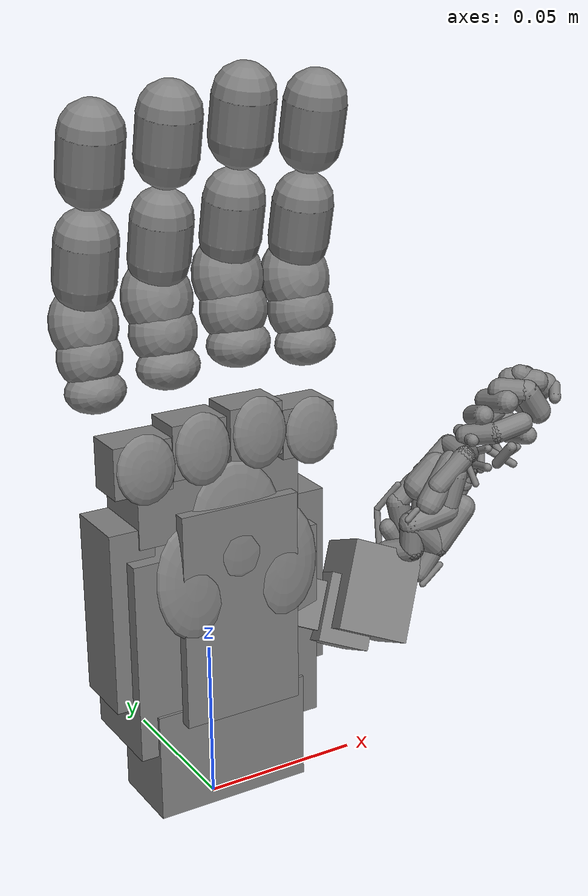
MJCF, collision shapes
<mujoco model="Lingxi_Hand_V2_Right">
  <compiler angle="radian" meshdir="/home/ll/SRTP/Aero-Hand/handinformation/URDF/右/qbr/meshes/" />
  <option timestep="0.01" integrator="Euler" iterations="20" ls_iterations="20">
    <flag eulerdamp="disable" />
  </option>
  <custom>
    <numeric data="80" name="max_contact_points" />
    <numeric data="50" name="max_geom_pairs" />
  </custom>
  <asset>
    <material name="black" rgba="0.2 0.2 0.2 1" />
    <material name="gray" rgba="0.5 0.5 0.5 1" />
    <material name="white" rgba="0.529 0.549 0.549 1" />
    <material name="rubber" rgba="0.3 0.3 0.3 1" />
    <mesh name="v2_palm" file="v2_base_link.STL" />
    <mesh name="v2_thumb_base" file="link1.STL" />
    <mesh name="v2_thumb_mid" file="link2.STL" />
    <mesh name="v2_thumb_tip" file="link3.STL" />
    <mesh name="v2_index_proximal" file="link4.STL" />
    <mesh name="v2_index_distal" file="link5.STL" />
    <mesh name="v2_middle_proximal" file="link6.STL" />
    <mesh name="v2_middle_distal" file="link7.STL" />
    <mesh name="v2_ring_proximal" file="link8.STL" />
    <mesh name="v2_ring_distal" file="link9.STL" />
    <mesh name="v2_pinky_proximal" file="link10.STL" />
    <mesh name="v2_pinky_distal" file="link11.STL" />
  </asset>
  <default>
    <default class="v2_hand">
      <site group="4" />
      <default class="visual">
        <geom group="2" type="mesh" contype="0" conaffinity="0" density="0" material="white" />
      </default>
      <joint damping="0.02" armature="0.001559127" frictionloss="0.02" />
      <position kp="3.0" />
      <default class="mcp">
        <joint range="0 1.3963" damping="0.1" />
        <position ctrlrange="0 1.40" />
      </default>
      <default class="pip">
        <joint range="0 1.2915" damping="0.05" />
      </default>
      <default class="thumb_cmc">
        <joint range="0 1.3788" damping="0.1" />
        <position ctrlrange="0 1.38" />
      </default>
      <!-- 拇指 flex 代理遵循 handinformation 中的两段弯曲：
           被动段约 30°，主动段约 45°。 -->
      <default class="thumb_flex">
        <joint range="0 0.5236" damping="0.05" />
      </default>
      <default class="thumb_mcp">
        <joint range="0 0.7854" damping="0.05" />
        <position ctrlrange="0 0.79" />
      </default>
    </default>
  </default>
  <contact>
    <exclude body1="palm" body2="right_index_proximal" />
    <exclude body1="palm" body2="right_middle_proximal" />
    <exclude body1="palm" body2="right_ring_proximal" />
    <exclude body1="palm" body2="right_pinky_proximal" />
    <exclude body1="palm" body2="right_thumb_base" />
    <exclude body1="palm" body2="right_thumb_mid" />
    <exclude body1="palm" body2="right_ring_distal" />
    <exclude body1="palm" body2="right_pinky_distal" />
    <exclude body1="v2_mount" body2="right_index_proximal" />
    <exclude body1="v2_mount" body2="right_middle_proximal" />
    <exclude body1="v2_mount" body2="right_ring_proximal" />
    <exclude body1="v2_mount" body2="right_pinky_proximal" />
    <exclude body1="v2_mount" body2="right_thumb_base" />
    <exclude body1="right_index_proximal" body2="right_thumb_base" />
    <exclude body1="right_middle_proximal" body2="right_thumb_base" />
    <exclude body1="right_ring_proximal" body2="right_thumb_base" />
    <exclude body1="right_pinky_proximal" body2="right_thumb_base" />
    <exclude body1="right_index_proximal" body2="right_index_distal" />
    <exclude body1="right_middle_proximal" body2="right_middle_distal" />
    <exclude body1="right_ring_proximal" body2="right_ring_distal" />
    <exclude body1="right_pinky_proximal" body2="right_pinky_distal" />
    <exclude body1="right_thumb_base" body2="right_thumb_mid" />
    <exclude body1="right_thumb_mid" body2="right_thumb_tip" />
    <exclude body1="right_index_proximal" body2="right_middle_proximal" />
    <exclude body1="right_index_distal" body2="right_middle_distal" />
    <exclude body1="right_middle_proximal" body2="right_ring_proximal" />
    <exclude body1="right_middle_distal" body2="right_ring_distal" />
    <exclude body1="right_ring_proximal" body2="right_pinky_proximal" />
    <exclude body1="right_ring_distal" body2="right_pinky_distal" />
    <exclude body1="right_index_proximal" body2="right_middle_distal" />
    <exclude body1="right_middle_proximal" body2="right_ring_distal" />
    <exclude body1="right_ring_proximal" body2="right_pinky_distal" />
    <exclude body1="right_middle_proximal" body2="right_index_distal" />
    <exclude body1="right_ring_proximal" body2="right_middle_distal" />
    <exclude body1="right_pinky_proximal" body2="right_ring_distal" />
  </contact>
  <worldbody>
    <body name="v2_mount" pos="0 0 0" euler="1.5708 0 0" childclass="v2_hand">
      <body name="palm" pos="0 0 0">
        <geom type="mesh" mesh="v2_palm" class="visual" />
        <geom name="palm_capsule_000" type="box" size="0.0300 0.0310 0.0145" pos="0.0000 0.0580 -0.0010" group="3" friction="1.95 0.014 0.0002" solref="0.008 1.1" solimp="0.95 0.995 0.0005" />
        <geom name="palm_capsule_001" type="box" size="0.0260 0.0140 0.0105" pos="0.0000 0.1060 -0.0010" group="3" friction="1.95 0.014 0.0002" solref="0.008 1.1" solimp="0.95 0.995 0.0005" />
        <geom name="palm_capsule_002" type="box" size="0.0245 0.0170 0.0120" pos="0.0000 0.0230 0.0025" group="3" friction="1.90 0.014 0.0002" solref="0.008 1.1" solimp="0.95 0.995 0.0005" />
        <geom name="palm_capsule_003" type="box" size="0.0070 0.0280 0.0100" pos="0.0280 0.0700 -0.0010" group="3" friction="1.95 0.014 0.0002" solref="0.008 1.1" solimp="0.95 0.995 0.0005" />
        <geom name="palm_capsule_004" type="box" size="0.0070 0.0280 0.0100" pos="-0.0280 0.0700 -0.0010" group="3" friction="1.95 0.014 0.0002" solref="0.008 1.1" solimp="0.95 0.995 0.0005" />
        <geom name="palm_capsule_005" type="box" size="0.0185 0.0330 0.0018" pos="0.0000 0.0715 0.0198" group="3" friction="2.80 0.020 0.0002" solref="0.008 1.1" solimp="0.95 0.995 0.0005" />
        <geom name="palm_capsule_006" type="ellipsoid" group="3" friction="2.50 0.018 0.0002" solref="0.008 1.1" solimp="0.95 0.995 0.0005" pos="0.0145 0.0835 0.0195" quat="0.999048 -0.043619 0 0" size="0.0115 0.0175 0.0024" />
        <geom name="palm_capsule_007" type="ellipsoid" group="3" friction="2.50 0.018 0.0002" solref="0.008 1.1" solimp="0.95 0.995 0.0005" pos="-0.0145 0.0835 0.0195" quat="0.999048 -0.043619 0 0" size="0.0115 0.0175 0.0024" />
        <geom name="palm_capsule_008" type="ellipsoid" group="3" friction="2.45 0.017 0.0002" solref="0.008 1.1" solimp="0.95 0.995 0.0005" pos="0.0000 0.0980 0.0190" quat="0.999048 -0.043619 0 0" size="0.0145 0.0185 0.0024" />
        <geom name="palm_capsule_009" type="box" size="0.0085 0.0075 0.0062" pos="0.0255 0.1205 0.0102" group="3" friction="2.10 0.015 0.0002" solref="0.008 1.1" solimp="0.95 0.995 0.0005" />
        <geom name="palm_capsule_010" type="ellipsoid" group="3" friction="2.35 0.016 0.0002" solref="0.008 1.1" solimp="0.95 0.995 0.0005" pos="0.0255 0.1210 0.0182" quat="0.999048 -0.043619 0 0" size="0.0086 0.0100 0.0023" />
        <geom name="palm_capsule_011" type="box" size="0.0084 0.0080 0.0063" pos="0.0085 0.1230 0.0100" group="3" friction="2.10 0.015 0.0002" solref="0.008 1.1" solimp="0.95 0.995 0.0005" />
        <geom name="palm_capsule_012" type="ellipsoid" group="3" friction="2.35 0.016 0.0002" solref="0.008 1.1" solimp="0.95 0.995 0.0005" pos="0.0085 0.1235 0.0180" quat="0.999048 -0.043619 0 0" size="0.0085 0.0105 0.0023" />
        <geom name="palm_capsule_013" type="box" size="0.0084 0.0080 0.0063" pos="-0.0095 0.1215 0.0100" group="3" friction="2.10 0.015 0.0002" solref="0.008 1.1" solimp="0.95 0.995 0.0005" />
        <geom name="palm_capsule_014" type="ellipsoid" group="3" friction="2.35 0.016 0.0002" solref="0.008 1.1" solimp="0.95 0.995 0.0005" pos="-0.0095 0.1220 0.0180" quat="0.999048 -0.043619 0 0" size="0.0085 0.0105 0.0023" />
        <geom name="palm_capsule_015" type="box" size="0.0088 0.0075 0.0062" pos="-0.0270 0.1190 0.0102" group="3" friction="2.10 0.015 0.0002" solref="0.008 1.1" solimp="0.95 0.995 0.0005" />
        <geom name="palm_capsule_016" type="ellipsoid" group="3" friction="2.35 0.016 0.0002" solref="0.008 1.1" solimp="0.95 0.995 0.0005" pos="-0.0270 0.1195 0.0182" quat="0.999048 -0.043619 0 0" size="0.0088 0.0100 0.0023" />
        <site name="grasp_site" pos="0 0.085 -0.020" group="4" />
        <body name="right_index_proximal" pos="0.034276 0.1374 0.001">
          <inertial pos="-0.003657 0.0162 0.000274" mass="0.0686" diaginertia="7.49e-06 7.33e-06 2.82e-06" />
          <joint name="right_index_mcp" axis="1 0 0" class="mcp" />
          <geom type="mesh" mesh="v2_index_proximal" class="visual" />
          <geom name="right_index_proximal_capsule_000" type="ellipsoid" group="3" friction="1.5" solref="0.005 1.0" solimp="0.97 0.999 0.0001" pos="-0.003700 0.006000 0.005400" quat="0.999048 -0.043619 0 0" size="0.009400 0.006600 0.007600" />
          <geom name="right_index_proximal_capsule_001" type="ellipsoid" group="3" friction="1.5" solref="0.005 1.0" solimp="0.97 0.999 0.0001" pos="-0.003950 0.024400 0.000200" quat="0.987688 -0.156434 0 0" size="0.010400 0.011800 0.008900" />
          <geom name="right_index_proximal_capsule_002" type="ellipsoid" group="3" friction="1.5" solref="0.005 1.0" solimp="0.97 0.999 0.0001" pos="-0.003650 0.015400 0.002700" quat="0.994522 -0.104528 0 0" size="0.010000 0.009600 0.008300" />
          <body name="right_index_distal" pos="0.00084336 0.031988 -0.0026473">
            <inertial pos="-0.00450 0.0246 0.00927" mass="0.0755" diaginertia="1.58e-05 1.57e-05 2.47e-06" />
            <joint name="right_index_pip" axis="1 0 0" class="pip" />
            <geom type="mesh" mesh="v2_index_distal" class="visual" />
            <geom name="right_index_distal_capsule_000" type="capsule" group="3" friction="1.5" solref="0.005 1.0" solimp="0.97 0.999 0.0001" fromto="-0.004533 0.003643 0.004505 -0.004547 0.015148 0.007211" size="0.008789" />
            <geom name="right_index_distal_capsule_001" type="capsule" group="3" friction="1.5" solref="0.005 1.0" solimp="0.97 0.999 0.0001" fromto="-0.004569 0.032374 0.011263 -0.004584 0.043669 0.013920" size="0.008894" />
            <site name="if_tip" pos="-0.004 0.052 0.005" group="4" />
            <site name="if_tip_t00" pos="-0.007 0.042 0.005" size="0.003" />
            <site name="if_tip_t01" pos="-0.005 0.042 0.005" size="0.003" />
            <site name="if_tip_t02" pos="-0.003 0.042 0.005" size="0.003" />
            <site name="if_tip_t03" pos="-0.001 0.042 0.005" size="0.003" />
            <site name="if_tip_t04" pos="-0.007 0.045 0.005" size="0.003" />
            <site name="if_tip_t05" pos="-0.005 0.045 0.005" size="0.003" />
            <site name="if_tip_t06" pos="-0.003 0.045 0.005" size="0.003" />
            <site name="if_tip_t07" pos="-0.001 0.045 0.005" size="0.003" />
            <site name="if_tip_t08" pos="-0.007 0.048 0.005" size="0.003" />
            <site name="if_tip_t09" pos="-0.005 0.048 0.005" size="0.003" />
            <site name="if_tip_t10" pos="-0.003 0.048 0.005" size="0.003" />
            <site name="if_tip_t11" pos="-0.001 0.048 0.005" size="0.003" />
            <site name="if_tip_t12" pos="-0.007 0.051 0.005" size="0.003" />
            <site name="if_tip_t13" pos="-0.005 0.051 0.005" size="0.003" />
            <site name="if_tip_t14" pos="-0.003 0.051 0.005" size="0.003" />
            <site name="if_tip_t15" pos="-0.001 0.051 0.005" size="0.003" />
          </body>
        </body>
        <body name="right_middle_proximal" pos="0.012276 0.14055 0.001">
          <inertial pos="-0.003657 0.0162 0.000274" mass="0.0686" diaginertia="7.49e-06 7.33e-06 2.82e-06" />
          <joint name="right_middle_mcp" axis="1 0 0" class="mcp" />
          <geom type="mesh" mesh="v2_middle_proximal" class="visual" />
          <geom name="right_middle_proximal_capsule_000" type="ellipsoid" group="3" friction="1.5" solref="0.005 1.0" solimp="0.97 0.999 0.0001" pos="-0.003700 0.006100 0.005500" quat="0.999048 -0.043619 0 0" size="0.009600 0.006800 0.007800" />
          <geom name="right_middle_proximal_capsule_001" type="ellipsoid" group="3" friction="1.5" solref="0.005 1.0" solimp="0.97 0.999 0.0001" pos="-0.003950 0.024600 0.000300" quat="0.987688 -0.156434 0 0" size="0.010500 0.012000 0.009000" />
          <geom name="right_middle_proximal_capsule_002" type="ellipsoid" group="3" friction="1.5" solref="0.005 1.0" solimp="0.97 0.999 0.0001" pos="-0.003650 0.015600 0.002900" quat="0.994522 -0.104528 0 0" size="0.010100 0.009900 0.008500" />
          <body name="right_middle_distal" pos="0 0.02968 -0.0024563">
            <inertial pos="-0.00366 0.0269 0.00908" mass="0.0755" diaginertia="1.58e-05 1.57e-05 2.47e-06" />
            <joint name="right_middle_pip" axis="1 0 0" class="pip" />
            <geom type="mesh" mesh="v2_middle_distal" class="visual" />
            <geom name="right_middle_distal_capsule_000" type="capsule" group="3" friction="1.5" solref="0.005 1.0" solimp="0.97 0.999 0.0001" fromto="-0.003689 0.005951 0.004314 -0.003704 0.017455 0.007020" size="0.008789" />
            <geom name="right_middle_distal_capsule_001" type="capsule" group="3" friction="1.5" solref="0.005 1.0" solimp="0.97 0.999 0.0001" fromto="-0.003726 0.034682 0.011072 -0.003740 0.045977 0.013729" size="0.008894" />
            <site name="mf_tip" pos="-0.004 0.052 0.005" group="4" />
            <site name="mf_tip_t00" pos="-0.007 0.042 0.005" size="0.003" />
            <site name="mf_tip_t01" pos="-0.005 0.042 0.005" size="0.003" />
            <site name="mf_tip_t02" pos="-0.003 0.042 0.005" size="0.003" />
            <site name="mf_tip_t03" pos="-0.001 0.042 0.005" size="0.003" />
            <site name="mf_tip_t04" pos="-0.007 0.045 0.005" size="0.003" />
            <site name="mf_tip_t05" pos="-0.005 0.045 0.005" size="0.003" />
            <site name="mf_tip_t06" pos="-0.003 0.045 0.005" size="0.003" />
            <site name="mf_tip_t07" pos="-0.001 0.045 0.005" size="0.003" />
            <site name="mf_tip_t08" pos="-0.007 0.048 0.005" size="0.003" />
            <site name="mf_tip_t09" pos="-0.005 0.048 0.005" size="0.003" />
            <site name="mf_tip_t10" pos="-0.003 0.048 0.005" size="0.003" />
            <site name="mf_tip_t11" pos="-0.001 0.048 0.005" size="0.003" />
            <site name="mf_tip_t12" pos="-0.007 0.051 0.005" size="0.003" />
            <site name="mf_tip_t13" pos="-0.005 0.051 0.005" size="0.003" />
            <site name="mf_tip_t14" pos="-0.003 0.051 0.005" size="0.003" />
            <site name="mf_tip_t15" pos="-0.001 0.051 0.005" size="0.003" />
          </body>
        </body>
        <body name="right_ring_proximal" pos="-0.009724 0.1374 0.001">
          <inertial pos="-0.003657 0.0162 0.000274" mass="0.0686" diaginertia="7.49e-06 7.33e-06 2.82e-06" />
          <joint name="right_ring_mcp" axis="1 0 0" class="mcp" />
          <geom type="mesh" mesh="v2_ring_proximal" class="visual" />
          <geom name="right_ring_proximal_capsule_000" type="ellipsoid" group="3" friction="1.5" solref="0.005 1.0" solimp="0.97 0.999 0.0001" pos="-0.003700 0.006000 0.005300" quat="0.999048 -0.043619 0 0" size="0.009300 0.006500 0.007500" />
          <geom name="right_ring_proximal_capsule_001" type="ellipsoid" group="3" friction="1.5" solref="0.005 1.0" solimp="0.97 0.999 0.0001" pos="-0.003950 0.024300 0.000150" quat="0.987688 -0.156434 0 0" size="0.010300 0.011700 0.008800" />
          <geom name="right_ring_proximal_capsule_002" type="ellipsoid" group="3" friction="1.5" solref="0.005 1.0" solimp="0.97 0.999 0.0001" pos="-0.003650 0.015200 0.002600" quat="0.994522 -0.104528 0 0" size="0.009900 0.009500 0.008200" />
          <body name="right_ring_distal" pos="0 0.02968 -0.0024563">
            <inertial pos="-0.00366 0.0269 0.00908" mass="0.0755" diaginertia="1.58e-05 1.57e-05 2.47e-06" />
            <joint name="right_ring_pip" axis="1 0 0" class="pip" />
            <geom type="mesh" mesh="v2_ring_distal" class="visual" />
            <geom name="right_ring_distal_capsule_000" type="capsule" group="3" friction="1.5" solref="0.005 1.0" solimp="0.97 0.999 0.0001" fromto="-0.003689 0.005951 0.004314 -0.003704 0.017455 0.007020" size="0.008789" />
            <geom name="right_ring_distal_capsule_001" type="capsule" group="3" friction="1.5" solref="0.005 1.0" solimp="0.97 0.999 0.0001" fromto="-0.003726 0.034682 0.011072 -0.003740 0.045977 0.013729" size="0.008894" />
            <site name="rf_tip" pos="-0.004 0.052 0.005" group="4" />
            <site name="rf_tip_t00" pos="-0.007 0.042 0.005" size="0.003" />
            <site name="rf_tip_t01" pos="-0.005 0.042 0.005" size="0.003" />
            <site name="rf_tip_t02" pos="-0.003 0.042 0.005" size="0.003" />
            <site name="rf_tip_t03" pos="-0.001 0.042 0.005" size="0.003" />
            <site name="rf_tip_t04" pos="-0.007 0.045 0.005" size="0.003" />
            <site name="rf_tip_t05" pos="-0.005 0.045 0.005" size="0.003" />
            <site name="rf_tip_t06" pos="-0.003 0.045 0.005" size="0.003" />
            <site name="rf_tip_t07" pos="-0.001 0.045 0.005" size="0.003" />
            <site name="rf_tip_t08" pos="-0.007 0.048 0.005" size="0.003" />
            <site name="rf_tip_t09" pos="-0.005 0.048 0.005" size="0.003" />
            <site name="rf_tip_t10" pos="-0.003 0.048 0.005" size="0.003" />
            <site name="rf_tip_t11" pos="-0.001 0.048 0.005" size="0.003" />
            <site name="rf_tip_t12" pos="-0.007 0.051 0.005" size="0.003" />
            <site name="rf_tip_t13" pos="-0.005 0.051 0.005" size="0.003" />
            <site name="rf_tip_t14" pos="-0.003 0.051 0.005" size="0.003" />
            <site name="rf_tip_t15" pos="-0.001 0.051 0.005" size="0.003" />
          </body>
        </body>
        <body name="right_pinky_proximal" pos="-0.031724 0.13417 0.001">
          <inertial pos="-0.003657 0.0162 0.000274" mass="0.0686" diaginertia="7.49e-06 7.33e-06 2.82e-06" />
          <joint name="right_pinky_mcp" axis="1 0 0" class="mcp" />
          <geom type="mesh" mesh="v2_pinky_proximal" class="visual" />
          <geom name="right_pinky_proximal_capsule_000" type="ellipsoid" group="3" friction="1.5" solref="0.005 1.0" solimp="0.97 0.999 0.0001" pos="-0.003550 0.005700 0.005000" quat="0.999048 -0.043619 0 0" size="0.008700 0.006100 0.007100" />
          <geom name="right_pinky_proximal_capsule_001" type="ellipsoid" group="3" friction="1.5" solref="0.005 1.0" solimp="0.97 0.999 0.0001" pos="-0.003850 0.023500 0.000000" quat="0.987688 -0.156434 0 0" size="0.009700 0.011000 0.008300" />
          <geom name="right_pinky_proximal_capsule_002" type="ellipsoid" group="3" friction="1.5" solref="0.005 1.0" solimp="0.97 0.999 0.0001" pos="-0.003650 0.014700 0.002400" quat="0.994522 -0.104528 0 0" size="0.009200 0.008900 0.007700" />
          <body name="right_pinky_distal" pos="0.00084336 0.031988 -0.0026473">
            <inertial pos="-0.00450 0.0246 0.00927" mass="0.0755" diaginertia="1.58e-05 1.57e-05 2.47e-06" />
            <joint name="right_pinky_pip" axis="1 0 0" class="pip" />
            <geom type="mesh" mesh="v2_pinky_distal" class="visual" />
            <geom name="right_pinky_distal_capsule_000" type="capsule" group="3" friction="1.5" solref="0.005 1.0" solimp="0.97 0.999 0.0001" fromto="-0.004533 0.003643 0.004505 -0.004547 0.015148 0.007211" size="0.008789" />
            <geom name="right_pinky_distal_capsule_001" type="capsule" group="3" friction="1.5" solref="0.005 1.0" solimp="0.97 0.999 0.0001" fromto="-0.004569 0.032374 0.011263 -0.004584 0.043669 0.013920" size="0.008894" />
            <site name="pf_tip" pos="-0.004 0.052 0.005" group="4" />
            <site name="pf_tip_t00" pos="-0.007 0.042 0.005" size="0.003" />
            <site name="pf_tip_t01" pos="-0.005 0.042 0.005" size="0.003" />
            <site name="pf_tip_t02" pos="-0.003 0.042 0.005" size="0.003" />
            <site name="pf_tip_t03" pos="-0.001 0.042 0.005" size="0.003" />
            <site name="pf_tip_t04" pos="-0.007 0.045 0.005" size="0.003" />
            <site name="pf_tip_t05" pos="-0.005 0.045 0.005" size="0.003" />
            <site name="pf_tip_t06" pos="-0.003 0.045 0.005" size="0.003" />
            <site name="pf_tip_t07" pos="-0.001 0.045 0.005" size="0.003" />
            <site name="pf_tip_t08" pos="-0.007 0.048 0.005" size="0.003" />
            <site name="pf_tip_t09" pos="-0.005 0.048 0.005" size="0.003" />
            <site name="pf_tip_t10" pos="-0.003 0.048 0.005" size="0.003" />
            <site name="pf_tip_t11" pos="-0.001 0.048 0.005" size="0.003" />
            <site name="pf_tip_t12" pos="-0.007 0.051 0.005" size="0.003" />
            <site name="pf_tip_t13" pos="-0.005 0.051 0.005" size="0.003" />
            <site name="pf_tip_t14" pos="-0.003 0.051 0.005" size="0.003" />
            <site name="pf_tip_t15" pos="-0.001 0.051 0.005" size="0.003" />
          </body>
        </body>
        <body name="right_thumb_base" pos="0.028693 0.069894 0.010325" quat="0.999048 0 0 0.043619">
          <inertial pos="0.013775 -0.009814 0.002084" mass="0.08488" diaginertia="1.03e-05 9.49e-06 5.67e-06" />
          <joint name="right_thumb_cmc_abd" axis="0 -1 0" class="thumb_cmc" />
          <geom type="mesh" mesh="v2_thumb_base" class="visual" />
          <!-- Keep only the thumb-base box scaffold that actually contributes to
               opposition support; avoid extra palm-connection ellipsoids. -->
          <geom name="right_thumb_base_capsule_000" type="box" size="0.011200 0.010800 0.013800" pos="0.018600 -0.008900 0.003600" quat="0.237188 0.108156 0.803420 0.535313" group="3" friction="1.6" solref="0.005 1.0" solimp="0.97 0.999 0.0001" />
          <geom name="right_thumb_base_capsule_001" type="box" size="0.008200 0.008800 0.010600" pos="0.009800 -0.014200 0.000400" quat="0.237188 0.108156 0.803420 0.535313" group="3" friction="1.6" solref="0.005 1.0" solimp="0.97 0.999 0.0001" />
          <geom name="right_thumb_base_capsule_002" type="box" size="0.006400 0.007000 0.007600" pos="-0.001800 -0.008600 -0.003600" quat="0.237188 0.108156 0.803420 0.535313" group="3" friction="1.6" solref="0.005 1.0" solimp="0.97 0.999 0.0001" />
          <body name="right_thumb_mid" pos="0.02679 -0.0045 0.0045976" quat="0.641137 -0.027549 -0.766225 -0.032924">
            <inertial pos="0 0.01832 -0.01287" mass="0.18907" diaginertia="4.62e-05 4.25e-05 1.60e-05" />
            <joint name="right_thumb_cmc_flex" axis="1 0 0" class="thumb_flex" />
            <geom type="mesh" mesh="v2_thumb_mid" class="visual" />
            <geom name="right_thumb_mid_capsule_000" type="capsule" group="3" friction="1.62" solref="0.005 1.0" solimp="0.97 0.999 0.0001" fromto="0.005400 0.037332 -0.021449 -0.005800 0.037332 -0.021449" size="0.003014" />
            <geom name="right_thumb_mid_capsule_001" type="capsule" group="3" friction="1.62" solref="0.005 1.0" solimp="0.97 0.999 0.0001" fromto="0.005400 0.009332 -0.013049 0.005400 0.020532 -0.021449" size="0.003994" />
            <geom name="right_thumb_mid_capsule_002" type="capsule" group="3" friction="1.62" solref="0.005 1.0" solimp="0.97 0.999 0.0001" fromto="0.005400 0.037332 -0.021449 0.005400 0.028932 -0.013049" size="0.003270" />
            <geom name="right_thumb_mid_capsule_003" type="capsule" group="3" friction="1.62" solref="0.005 1.0" solimp="0.97 0.999 0.0001" fromto="-0.005800 0.014932 -0.013049 -0.005800 0.028932 -0.013049" size="0.003287" />
            <geom name="right_thumb_mid_capsule_004" type="capsule" group="3" friction="1.62" solref="0.005 1.0" solimp="0.97 0.999 0.0001" fromto="0.005400 0.017732 -0.004649 0.005400 0.020532 -0.015849" size="0.004083" />
            <geom name="right_thumb_mid_capsule_005" type="capsule" group="3" friction="1.62" solref="0.005 1.0" solimp="0.97 0.999 0.0001" fromto="-0.005800 0.028932 -0.029849 -0.005800 0.017732 -0.024249" size="0.002700" />
            <geom name="right_thumb_mid_capsule_006" type="capsule" group="3" friction="1.62" solref="0.005 1.0" solimp="0.97 0.999 0.0001" fromto="-0.005800 0.020532 -0.004649 -0.005800 0.009332 -0.007449" size="0.003506" />
            <geom name="right_thumb_mid_capsule_007" type="capsule" group="3" friction="1.62" solref="0.005 1.0" solimp="0.97 0.999 0.0001" fromto="-0.000200 0.006532 0.000951 0.005400 0.009332 -0.004649" size="0.003824" />
            <geom name="right_thumb_mid_capsule_008" type="capsule" group="3" friction="1.62" solref="0.005 1.0" solimp="0.97 0.999 0.0001" fromto="-0.005800 0.037332 -0.021449 -0.005800 0.028932 -0.013049" size="0.003014" />
            <geom name="right_thumb_mid_capsule_009" type="capsule" group="3" friction="1.62" solref="0.005 1.0" solimp="0.97 0.999 0.0001" fromto="-0.005800 0.023332 -0.018649 -0.005800 0.034532 -0.027049" size="0.002949" />
            <geom name="right_thumb_mid_capsule_010" type="capsule" group="3" friction="1.62" solref="0.005 1.0" solimp="0.97 0.999 0.0001" fromto="-0.005800 0.003732 -0.007449 0.005400 -0.001868 -0.004649" size="0.002013" />
            <geom name="right_thumb_mid_capsule_011" type="capsule" group="3" friction="1.62" solref="0.005 1.0" solimp="0.97 0.999 0.0001" fromto="0.008200 0.003732 -0.013049 0.008200 -0.001868 -0.007449" size="0.001000" />
            <geom name="right_thumb_mid_capsule_012" type="capsule" group="3" friction="1.62" solref="0.005 1.0" solimp="0.97 0.999 0.0001" fromto="-0.003000 0.031732 -0.015849 -0.003000 0.026132 -0.010249" size="0.004500" />
            <geom name="right_thumb_mid_capsule_013" type="capsule" group="3" friction="1.62" solref="0.005 1.0" solimp="0.97 0.999 0.0001" fromto="-0.005800 0.012132 -0.018649 -0.005800 0.003732 -0.007449" size="0.002718" />
            <geom name="right_thumb_mid_capsule_014" type="capsule" group="3" friction="1.62" solref="0.005 1.0" solimp="0.97 0.999 0.0001" fromto="0.005400 0.023332 -0.010249 0.002600 0.034532 -0.018649" size="0.004046" />
            <geom name="right_thumb_mid_capsule_015" type="capsule" group="3" friction="1.62" solref="0.005 1.0" solimp="0.97 0.999 0.0001" fromto="-0.005800 0.003732 0.000951 -0.008600 0.017732 0.000951" size="0.001000" />
            <geom name="right_thumb_mid_capsule_016" type="capsule" group="3" friction="1.62" solref="0.005 1.0" solimp="0.97 0.999 0.0001" fromto="0.005400 0.031732 -0.018649 0.005400 0.020532 -0.015849" size="0.003556" />
            <geom name="right_thumb_mid_capsule_017" type="capsule" group="3" friction="1.62" solref="0.005 1.0" solimp="0.97 0.999 0.0001" fromto="-0.005800 0.012132 -0.018649 -0.005800 0.017732 -0.024249" size="0.002700" />
            <geom name="right_thumb_mid_capsule_018" type="capsule" group="3" friction="1.62" solref="0.005 1.0" solimp="0.97 0.999 0.0001" fromto="-0.005800 0.020532 -0.004649 -0.005800 0.026132 -0.010249" size="0.003378" />
            <geom name="right_thumb_mid_capsule_019" type="capsule" group="3" friction="1.62" solref="0.005 1.0" solimp="0.97 0.999 0.0001" fromto="-0.005800 0.012132 -0.001849 -0.005800 0.003732 -0.007449" size="0.002902" />
            <geom name="right_thumb_mid_capsule_020" type="capsule" group="3" friction="1.62" solref="0.005 1.0" solimp="0.97 0.999 0.0001" fromto="-0.005800 0.028932 -0.029849 -0.005800 0.023332 -0.018649" size="0.002975" />
            <geom name="right_thumb_mid_capsule_021" type="capsule" group="3" friction="1.62" solref="0.005 1.0" solimp="0.97 0.999 0.0001" fromto="0.008200 0.023332 -0.004649 0.008200 0.020532 -0.001849" size="0.001000" />
            <geom name="right_thumb_mid_capsule_022" type="capsule" group="3" friction="1.62" solref="0.005 1.0" solimp="0.97 0.999 0.0001" fromto="0.005400 0.009332 -0.013049 0.005400 0.000932 -0.007449" size="0.003219" />
            <geom name="right_thumb_mid_capsule_023" type="capsule" group="3" friction="1.62" solref="0.005 1.0" solimp="0.97 0.999 0.0001" fromto="-0.005800 0.012132 -0.018649 -0.005800 0.023332 -0.018649" size="0.002718" />
            <geom name="right_thumb_mid_capsule_024" type="capsule" group="3" friction="1.62" solref="0.005 1.0" solimp="0.97 0.999 0.0001" fromto="0.005400 0.009332 -0.013049 0.005400 0.017732 -0.004649" size="0.004001" />
            <geom name="right_thumb_mid_capsule_025" type="capsule" group="3" friction="1.62" solref="0.005 1.0" solimp="0.97 0.999 0.0001" fromto="0.005400 0.037332 -0.021449 -0.003000 0.034532 -0.027049" size="0.003270" />
            <geom name="right_thumb_mid_capsule_026" type="capsule" group="3" friction="1.62" solref="0.005 1.0" solimp="0.97 0.999 0.0001" fromto="0.005400 0.000932 -0.004649 0.002600 0.006532 -0.013049" size="0.003067" />
            <geom name="right_thumb_mid_capsule_027" type="capsule" group="3" friction="1.62" solref="0.005 1.0" solimp="0.97 0.999 0.0001" fromto="-0.005800 0.023332 -0.018649 -0.005800 0.037332 -0.021449" size="0.003014" />
            <geom name="right_thumb_mid_capsule_028" type="capsule" group="3" friction="1.62" solref="0.005 1.0" solimp="0.97 0.999 0.0001" fromto="-0.005800 0.026132 -0.004649 -0.008600 0.017732 0.000951" size="0.001000" />
            <geom name="right_thumb_mid_capsule_029" type="capsule" group="3" friction="1.62" solref="0.005 1.0" solimp="0.97 0.999 0.0001" fromto="0.005400 0.037332 -0.021449 0.008200 0.028932 -0.024249" size="0.001000" />
            <geom name="right_thumb_mid_capsule_030" type="capsule" group="3" friction="1.62" solref="0.005 1.0" solimp="0.97 0.999 0.0001" fromto="-0.005800 0.023332 -0.027049 -0.005800 0.023332 -0.018649" size="0.003022" />
            <geom name="right_thumb_mid_capsule_031" type="capsule" group="3" friction="1.62" solref="0.005 1.0" solimp="0.97 0.999 0.0001" fromto="-0.005800 0.028932 -0.029849 -0.005800 0.037332 -0.021449" size="0.002975" />
            <geom name="right_thumb_mid_capsule_032" type="capsule" group="3" friction="1.62" solref="0.005 1.0" solimp="0.97 0.999 0.0001" fromto="0.005400 0.017732 -0.004649 0.005400 0.009332 -0.004649" size="0.003824" />
            <geom name="right_thumb_mid_capsule_033" type="capsule" group="3" friction="1.62" solref="0.005 1.0" solimp="0.97 0.999 0.0001" fromto="-0.005800 0.012132 -0.018649 -0.005800 0.009332 -0.007449" size="0.002718" />
            <body name="right_thumb_tip" pos="0.0055478 0.0413 -0.024172">
              <inertial pos="-0.005551 0.005391 -0.014448" mass="0.07660" diaginertia="8.30e-06 8.00e-06 4.06e-06" />
              <joint name="right_thumb_mcp" axis="1 0 0" class="thumb_mcp" />
              <geom type="mesh" mesh="v2_thumb_tip" class="visual" />
              <geom name="right_thumb_tip_capsule_000" type="capsule" group="3" friction="1.70" solref="0.005 1.0" solimp="0.97 0.999 0.0001" fromto="-0.001254 0.000483 -0.000420 -0.010054 0.000483 -0.000420" size="0.002019" />
              <geom name="right_thumb_tip_capsule_001" type="capsule" group="3" friction="1.70" solref="0.005 1.0" solimp="0.97 0.999 0.0001" fromto="-0.007854 -0.001717 -0.015820 0.000946 0.000483 -0.018020" size="0.002843" />
              <geom name="right_thumb_tip_capsule_002" type="capsule" group="3" friction="1.72" solref="0.005 1.0" solimp="0.97 0.999 0.0001" fromto="-0.005654 0.013683 -0.026820 -0.010054 0.007083 -0.022420" size="0.003756" />
              <geom name="right_thumb_tip_capsule_003" type="capsule" group="3" friction="1.66" solref="0.005 1.0" solimp="0.97 0.999 0.0001" fromto="-0.012254 -0.008317 -0.009220 -0.003454 -0.010517 -0.004820" size="0.001262" />
              <geom name="right_thumb_tip_capsule_004" type="capsule" group="3" friction="1.70" solref="0.005 1.0" solimp="0.97 0.999 0.0001" fromto="-0.012254 0.000483 -0.018020 -0.012254 0.000483 -0.009220" size="0.003180" />
              <geom name="right_thumb_tip_capsule_005" type="capsule" group="3" friction="1.66" solref="0.005 1.0" solimp="0.97 0.999 0.0001" fromto="-0.007854 -0.006117 -0.009220 0.000946 -0.008317 -0.013620" size="0.001200" />
              <geom name="right_thumb_tip_capsule_006" type="capsule" group="3" friction="1.72" solref="0.005 1.0" solimp="0.97 0.999 0.0001" fromto="-0.001254 0.007083 -0.022420 -0.001254 0.013683 -0.018020" size="0.003948" />
              <geom name="right_thumb_tip_capsule_007" type="capsule" group="3" friction="1.70" solref="0.005 1.0" solimp="0.97 0.999 0.0001" fromto="-0.005654 0.000483 -0.000420 0.000946 0.002683 -0.007020" size="0.003312" />
              <geom name="right_thumb_tip_capsule_008" type="capsule" group="3" friction="1.72" solref="0.005 1.0" solimp="0.97 0.999 0.0001" fromto="-0.007854 0.015883 -0.015820 -0.003454 0.015883 -0.022420" size="0.003727" />
              <geom name="right_thumb_tip_capsule_009" type="capsule" group="3" friction="1.70" solref="0.005 1.0" solimp="0.97 0.999 0.0001" fromto="-0.001254 0.011483 -0.011420 -0.010054 0.009283 -0.009220" size="0.003659" />
              <geom name="right_thumb_tip_capsule_010" type="capsule" group="3" friction="1.72" solref="0.005 1.0" solimp="0.97 0.999 0.0001" fromto="-0.010054 0.015883 -0.022420 -0.012254 0.009283 -0.018020" size="0.002981" />
              <geom name="right_thumb_tip_capsule_011" type="capsule" group="3" friction="1.70" solref="0.005 1.0" solimp="0.97 0.999 0.0001" fromto="-0.003454 0.007083 -0.004820 -0.010054 0.004883 -0.004820" size="0.003212" />
              <geom name="right_thumb_tip_capsule_012" type="capsule" group="3" friction="1.66" solref="0.005 1.0" solimp="0.97 0.999 0.0001" fromto="-0.001254 -0.008317 -0.009220 0.003146 -0.001717 -0.011420" size="0.001651" />
              <geom name="right_thumb_tip_capsule_013" type="capsule" group="3" friction="1.72" solref="0.005 1.0" solimp="0.97 0.999 0.0001" fromto="-0.012254 0.011483 -0.026820 -0.007854 0.013683 -0.029020" size="0.001895" />
              <geom name="right_thumb_tip_capsule_014" type="capsule" group="3" friction="1.66" solref="0.005 1.0" solimp="0.97 0.999 0.0001" fromto="-0.003454 -0.003917 -0.007020 -0.012254 -0.008317 -0.004820" size="0.001200" />
              <geom name="right_thumb_tip_capsule_015" type="capsule" group="3" friction="1.66" solref="0.005 1.0" solimp="0.97 0.999 0.0001" fromto="-0.012254 -0.006117 -0.013620 -0.005654 -0.008317 -0.013620" size="0.001200" />
              <geom name="right_thumb_tip_capsule_016" type="capsule" group="3" friction="1.72" solref="0.005 1.0" solimp="0.97 0.999 0.0001" fromto="0.000946 0.011483 -0.026820 -0.003454 0.013683 -0.029020" size="0.001794" />
              <geom name="right_thumb_tip_capsule_017" type="capsule" group="3" friction="1.66" solref="0.005 1.0" solimp="0.97 0.999 0.0001" fromto="-0.007854 -0.010517 -0.004820 0.000946 -0.008317 -0.004820" size="0.001281" />
              <geom name="right_thumb_tip_capsule_018" type="capsule" group="3" friction="1.70" solref="0.005 1.0" solimp="0.97 0.999 0.0001" fromto="0.000946 0.002683 -0.007020 0.000946 0.004883 -0.015820" size="0.003312" />
              <geom name="right_thumb_tip_capsule_019" type="capsule" group="3" friction="1.66" solref="0.005 1.0" solimp="0.97 0.999 0.0001" fromto="-0.005654 -0.008317 -0.013620 -0.001254 -0.003917 -0.015820" size="0.001200" />
              <geom name="right_thumb_tip_capsule_020" type="capsule" group="3" friction="1.72" solref="0.005 1.0" solimp="0.97 0.999 0.0001" fromto="-0.001254 0.013683 -0.018020 -0.005654 0.013683 -0.011420" size="0.003864" />
              <geom name="right_thumb_tip_capsule_021" type="capsule" group="3" friction="1.70" solref="0.005 1.0" solimp="0.97 0.999 0.0001" fromto="-0.012254 0.000483 -0.018020 -0.012254 -0.006117 -0.013620" size="0.001674" />
              <geom name="right_thumb_tip_capsule_022" type="capsule" group="3" friction="1.70" solref="0.005 1.0" solimp="0.97 0.999 0.0001" fromto="-0.010054 0.002683 -0.007020 -0.012254 0.004883 -0.013620" size="0.003421" />
              <geom name="right_thumb_tip_capsule_023" type="capsule" group="3" friction="1.72" solref="0.005 1.0" solimp="0.97 0.999 0.0001" fromto="-0.005654 0.013683 -0.026820 -0.005654 0.018083 -0.018020" size="0.003021" />
              <site name="th_tip" pos="-0.006 0.021 -0.020" group="4" />
              <site name="th_tip_t00" pos="-0.010 0.008 -0.020" size="0.003" />
              <site name="th_tip_t01" pos="-0.007 0.008 -0.020" size="0.003" />
              <site name="th_tip_t02" pos="-0.004 0.008 -0.020" size="0.003" />
              <site name="th_tip_t03" pos="-0.001 0.008 -0.020" size="0.003" />
              <site name="th_tip_t04" pos="-0.010 0.012 -0.020" size="0.003" />
              <site name="th_tip_t05" pos="-0.007 0.012 -0.020" size="0.003" />
              <site name="th_tip_t06" pos="-0.004 0.012 -0.020" size="0.003" />
              <site name="th_tip_t07" pos="-0.001 0.012 -0.020" size="0.003" />
              <site name="th_tip_t08" pos="-0.010 0.016 -0.020" size="0.003" />
              <site name="th_tip_t09" pos="-0.007 0.016 -0.020" size="0.003" />
              <site name="th_tip_t10" pos="-0.004 0.016 -0.020" size="0.003" />
              <site name="th_tip_t11" pos="-0.001 0.016 -0.020" size="0.003" />
              <site name="th_tip_t12" pos="-0.010 0.020 -0.020" size="0.003" />
              <site name="th_tip_t13" pos="-0.007 0.020 -0.020" size="0.003" />
              <site name="th_tip_t14" pos="-0.004 0.020 -0.020" size="0.003" />
              <site name="th_tip_t15" pos="-0.001 0.020 -0.020" size="0.003" />
            </body>
          </body>
        </body>
      </body>
    </body>
  </worldbody>
  <actuator>
    <position name="hw_thumb_rot" joint="right_thumb_cmc_abd" class="thumb_cmc" kp="5" />
    <position name="hw_thumb_flex" joint="right_thumb_mcp" class="thumb_mcp" kp="3" />
    <position name="hw_index" joint="right_index_mcp" class="mcp" kp="3" />
    <position name="hw_middle" joint="right_middle_mcp" class="mcp" kp="3" />
    <position name="hw_ring" joint="right_ring_mcp" class="mcp" kp="3" />
    <position name="hw_pinky" joint="right_pinky_mcp" class="mcp" kp="3" />
  </actuator>
  <sensor>
    <jointpos name="hw_pos_thumb_rot" joint="right_thumb_cmc_abd" />
    <jointpos name="hw_pos_thumb_flex" joint="right_thumb_mcp" />
    <jointpos name="hw_pos_index" joint="right_index_mcp" />
    <jointpos name="hw_pos_middle" joint="right_middle_mcp" />
    <jointpos name="hw_pos_ring" joint="right_ring_mcp" />
    <jointpos name="hw_pos_pinky" joint="right_pinky_mcp" />
    <touch name="hw_tip_frc_thumb_00" site="th_tip_t00" />
    <touch name="hw_tip_frc_thumb_01" site="th_tip_t01" />
    <touch name="hw_tip_frc_thumb_02" site="th_tip_t02" />
    <touch name="hw_tip_frc_thumb_03" site="th_tip_t03" />
    <touch name="hw_tip_frc_thumb_04" site="th_tip_t04" />
    <touch name="hw_tip_frc_thumb_05" site="th_tip_t05" />
    <touch name="hw_tip_frc_thumb_06" site="th_tip_t06" />
    <touch name="hw_tip_frc_thumb_07" site="th_tip_t07" />
    <touch name="hw_tip_frc_thumb_08" site="th_tip_t08" />
    <touch name="hw_tip_frc_thumb_09" site="th_tip_t09" />
    <touch name="hw_tip_frc_thumb_10" site="th_tip_t10" />
    <touch name="hw_tip_frc_thumb_11" site="th_tip_t11" />
    <touch name="hw_tip_frc_thumb_12" site="th_tip_t12" />
    <touch name="hw_tip_frc_thumb_13" site="th_tip_t13" />
    <touch name="hw_tip_frc_thumb_14" site="th_tip_t14" />
    <touch name="hw_tip_frc_thumb_15" site="th_tip_t15" />
    <touch name="hw_tip_frc_index_00" site="if_tip_t00" />
    <touch name="hw_tip_frc_index_01" site="if_tip_t01" />
    <touch name="hw_tip_frc_index_02" site="if_tip_t02" />
    <touch name="hw_tip_frc_index_03" site="if_tip_t03" />
    <touch name="hw_tip_frc_index_04" site="if_tip_t04" />
    <touch name="hw_tip_frc_index_05" site="if_tip_t05" />
    <touch name="hw_tip_frc_index_06" site="if_tip_t06" />
    <touch name="hw_tip_frc_index_07" site="if_tip_t07" />
    <touch name="hw_tip_frc_index_08" site="if_tip_t08" />
    <touch name="hw_tip_frc_index_09" site="if_tip_t09" />
    <touch name="hw_tip_frc_index_10" site="if_tip_t10" />
    <touch name="hw_tip_frc_index_11" site="if_tip_t11" />
    <touch name="hw_tip_frc_index_12" site="if_tip_t12" />
    <touch name="hw_tip_frc_index_13" site="if_tip_t13" />
    <touch name="hw_tip_frc_index_14" site="if_tip_t14" />
    <touch name="hw_tip_frc_index_15" site="if_tip_t15" />
    <touch name="hw_tip_frc_middle_00" site="mf_tip_t00" />
    <touch name="hw_tip_frc_middle_01" site="mf_tip_t01" />
    <touch name="hw_tip_frc_middle_02" site="mf_tip_t02" />
    <touch name="hw_tip_frc_middle_03" site="mf_tip_t03" />
    <touch name="hw_tip_frc_middle_04" site="mf_tip_t04" />
    <touch name="hw_tip_frc_middle_05" site="mf_tip_t05" />
    <touch name="hw_tip_frc_middle_06" site="mf_tip_t06" />
    <touch name="hw_tip_frc_middle_07" site="mf_tip_t07" />
    <touch name="hw_tip_frc_middle_08" site="mf_tip_t08" />
    <touch name="hw_tip_frc_middle_09" site="mf_tip_t09" />
    <touch name="hw_tip_frc_middle_10" site="mf_tip_t10" />
    <touch name="hw_tip_frc_middle_11" site="mf_tip_t11" />
    <touch name="hw_tip_frc_middle_12" site="mf_tip_t12" />
    <touch name="hw_tip_frc_middle_13" site="mf_tip_t13" />
    <touch name="hw_tip_frc_middle_14" site="mf_tip_t14" />
    <touch name="hw_tip_frc_middle_15" site="mf_tip_t15" />
    <touch name="hw_tip_frc_ring_00" site="rf_tip_t00" />
    <touch name="hw_tip_frc_ring_01" site="rf_tip_t01" />
    <touch name="hw_tip_frc_ring_02" site="rf_tip_t02" />
    <touch name="hw_tip_frc_ring_03" site="rf_tip_t03" />
    <touch name="hw_tip_frc_ring_04" site="rf_tip_t04" />
    <touch name="hw_tip_frc_ring_05" site="rf_tip_t05" />
    <touch name="hw_tip_frc_ring_06" site="rf_tip_t06" />
    <touch name="hw_tip_frc_ring_07" site="rf_tip_t07" />
    <touch name="hw_tip_frc_ring_08" site="rf_tip_t08" />
    <touch name="hw_tip_frc_ring_09" site="rf_tip_t09" />
    <touch name="hw_tip_frc_ring_10" site="rf_tip_t10" />
    <touch name="hw_tip_frc_ring_11" site="rf_tip_t11" />
    <touch name="hw_tip_frc_ring_12" site="rf_tip_t12" />
    <touch name="hw_tip_frc_ring_13" site="rf_tip_t13" />
    <touch name="hw_tip_frc_ring_14" site="rf_tip_t14" />
    <touch name="hw_tip_frc_ring_15" site="rf_tip_t15" />
    <touch name="hw_tip_frc_pinky_00" site="pf_tip_t00" />
    <touch name="hw_tip_frc_pinky_01" site="pf_tip_t01" />
    <touch name="hw_tip_frc_pinky_02" site="pf_tip_t02" />
    <touch name="hw_tip_frc_pinky_03" site="pf_tip_t03" />
    <touch name="hw_tip_frc_pinky_04" site="pf_tip_t04" />
    <touch name="hw_tip_frc_pinky_05" site="pf_tip_t05" />
    <touch name="hw_tip_frc_pinky_06" site="pf_tip_t06" />
    <touch name="hw_tip_frc_pinky_07" site="pf_tip_t07" />
    <touch name="hw_tip_frc_pinky_08" site="pf_tip_t08" />
    <touch name="hw_tip_frc_pinky_09" site="pf_tip_t09" />
    <touch name="hw_tip_frc_pinky_10" site="pf_tip_t10" />
    <touch name="hw_tip_frc_pinky_11" site="pf_tip_t11" />
    <touch name="hw_tip_frc_pinky_12" site="pf_tip_t12" />
    <touch name="hw_tip_frc_pinky_13" site="pf_tip_t13" />
    <touch name="hw_tip_frc_pinky_14" site="pf_tip_t14" />
    <touch name="hw_tip_frc_pinky_15" site="pf_tip_t15" />
  </sensor>
  <equality>
    <joint joint1="right_index_pip" joint2="right_index_mcp" polycoef="0 0.925 0 0 0" solref="0.005 1" solimp="0.95 0.99 0.001" />
    <joint joint1="right_middle_pip" joint2="right_middle_mcp" polycoef="0 0.925 0 0 0" solref="0.005 1" solimp="0.95 0.99 0.001" />
    <joint joint1="right_ring_pip" joint2="right_ring_mcp" polycoef="0 0.925 0 0 0" solref="0.005 1" solimp="0.95 0.99 0.001" />
    <joint joint1="right_pinky_pip" joint2="right_pinky_mcp" polycoef="0 0.925 0 0 0" solref="0.005 1" solimp="0.95 0.99 0.001" />
    <!-- handinformation / qbr URDF / HW6 tendon model 都指向：
         thumb_flex 通道主要驱动 thumb_mcp，cmc_flex 是联动的被动段。
         这里用 30° / 45° ≈ 0.667 的线性代理，替代旧的 abd→flex 训练近似。 -->
    <joint joint1="right_thumb_cmc_flex" joint2="right_thumb_mcp" polycoef="0 0.6666667 0 0 0" solref="0.005 1" solimp="0.95 0.99 0.001" />
  </equality>
</mujoco>
